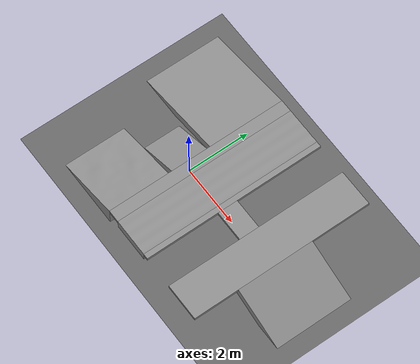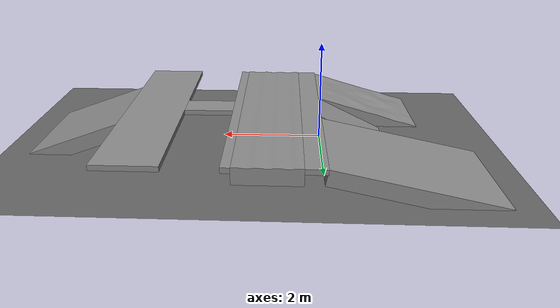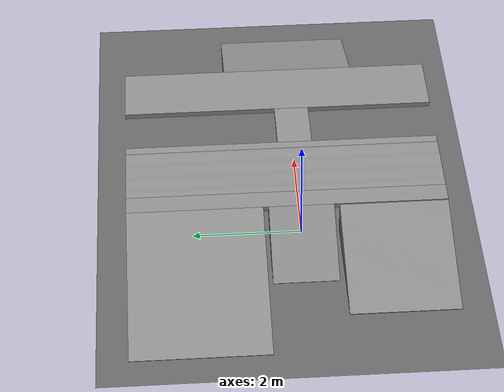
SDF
<?xml version="1.0"?>
<sdf version="1.8">
  <world name="coco_yard">

    <physics name="default_physics" type="dart">
      <max_step_size>0.002</max_step_size>
      <real_time_factor>1.0</real_time_factor>
    </physics>
    <gravity>0 0 -9.8</gravity>

    <plugin filename="gz-sim-physics-system" name="gz::sim::systems::Physics"/>
    <plugin filename="gz-sim-user-commands-system" name="gz::sim::systems::UserCommands"/>
    <plugin filename="gz-sim-scene-broadcaster-system" name="gz::sim::systems::SceneBroadcaster"/>
    <plugin filename="gz-sim-sensors-system" name="gz::sim::systems::Sensors">
      <render_engine>ogre2</render_engine>
    </plugin>
    <plugin filename="gz-sim-imu-system" name="gz::sim::systems::Imu"/>

    <light name="sun" type="directional">
      <cast_shadows>true</cast_shadows>
      <pose>0 0 10 0 0 0</pose>
      <diffuse>0.9 0.9 0.9 1</diffuse>
      <specular>0.3 0.3 0.3 1</specular>
      <direction>-0.5 0.1 -0.9</direction>
    </light>
    <light name="fill" type="directional">
      <cast_shadows>false</cast_shadows>
      <pose>0 0 5 0 0 0</pose>
      <diffuse>0.4 0.4 0.4 1</diffuse>
      <direction>0.5 -0.1 -0.9</direction>
    </light>

    <model name="ground_plane">
      <static>true</static>
      <link name="link">
        <collision name="collision">
          <geometry><plane><normal>0 0 1</normal><size>100 100</size></plane></geometry>
        </collision>
        <visual name="visual">
          <geometry><plane><normal>0 0 1</normal><size>100 100</size></plane></geometry>
          <material><ambient>0.4 0.4 0.4 1</ambient><diffuse>0.4 0.4 0.4 1</diffuse></material>
        </visual>
      </link>
    </model>

    <model name="route_a">
      <static>true</static>
      <link name="link">
        <pose>-1.497818 1.950000 0.178278 0.000000000 -0.209439510 0.000000000</pose>
        <collision name="collision">
          <geometry><box><size>3.126327 2.500000 0.300000</size></box></geometry>
          <surface><friction><ode><mu>0.700000</mu><mu2>0.700000</mu2></ode></friction></surface>
        </collision>
        <visual name="visual">
          <geometry><box><size>3.126327 2.500000 0.300000</size></box></geometry>
          <material><ambient>0.55 0.55 0.55 1</ambient><diffuse>0.55 0.55 0.55 1</diffuse></material>
        </visual>
      </link>
    </model>

    <model name="route_b">
      <static>true</static>
      <link name="link">
        <pose>-0.600593 0.000000 0.190181 0.000000000 -0.453785606 0.000000000</pose>
        <collision name="collision">
          <geometry><box><size>1.482762 1.200000 0.300000</size></box></geometry>
          <surface><friction><ode><mu>0.700000</mu><mu2>0.700000</mu2></ode></friction></surface>
        </collision>
        <visual name="visual">
          <geometry><box><size>1.482762 1.200000 0.300000</size></box></geometry>
          <material><ambient>0.55 0.55 0.55 1</ambient><diffuse>0.55 0.55 0.55 1</diffuse></material>
        </visual>
      </link>
    </model>

    <model name="deck_staging">
      <static>true</static>
      <link name="link">
        <pose>0.200000 0.250000 0.600000 0.000000000 0.000000000 0.000000000</pose>
        <collision name="collision">
          <geometry><box><size>0.400000 5.900000 0.100000</size></box></geometry>
          <surface><friction><ode><mu>0.700000</mu><mu2>0.700000</mu2></ode></friction></surface>
        </collision>
        <visual name="visual">
          <geometry><box><size>0.400000 5.900000 0.100000</size></box></geometry>
          <material><ambient>0.55 0.55 0.55 1</ambient><diffuse>0.55 0.55 0.55 1</diffuse></material>
        </visual>
      </link>
    </model>

    <model name="deck_transition">
      <static>true</static>
      <link name="link">
        <pose>1.712500 0.250000 0.600000 0.000000000 0.000000000 0.000000000</pose>
        <collision name="collision">
          <geometry><box><size>0.175000 5.900000 0.100000</size></box></geometry>
          <surface><friction><ode><mu>0.700000</mu><mu2>0.700000</mu2></ode></friction></surface>
        </collision>
        <visual name="visual">
          <geometry><box><size>0.175000 5.900000 0.100000</size></box></geometry>
          <material><ambient>0.55 0.55 0.55 1</ambient><diffuse>0.55 0.55 0.55 1</diffuse></material>
        </visual>
      </link>
    </model>

    <model name="bridge">
      <static>true</static>
      <link name="link">
        <pose>2.300000 0.000000 0.600000 0.000000000 0.000000000 0.000000000</pose>
        <collision name="collision">
          <geometry><box><size>1.000000 0.650000 0.100000</size></box></geometry>
          <surface><friction><ode><mu>0.700000</mu><mu2>0.700000</mu2></ode></friction></surface>
        </collision>
        <visual name="visual">
          <geometry><box><size>1.000000 0.650000 0.100000</size></box></geometry>
          <material><ambient>0.55 0.55 0.55 1</ambient><diffuse>0.55 0.55 0.55 1</diffuse></material>
        </visual>
      </link>
    </model>

    <model name="deck_approach">
      <static>true</static>
      <link name="link">
        <pose>3.400000 0.250000 0.600000 0.000000000 0.000000000 0.000000000</pose>
        <collision name="collision">
          <geometry><box><size>1.200000 5.900000 0.100000</size></box></geometry>
          <surface><friction><ode><mu>0.700000</mu><mu2>0.700000</mu2></ode></friction></surface>
        </collision>
        <visual name="visual">
          <geometry><box><size>1.200000 5.900000 0.100000</size></box></geometry>
          <material><ambient>0.55 0.55 0.55 1</ambient><diffuse>0.55 0.55 0.55 1</diffuse></material>
        </visual>
      </link>
    </model>

    <model name="descent">
      <static>true</static>
      <link name="link">
        <pose>4.841627 0.000000 0.184046 0.000000000 0.349065850 0.000000000</pose>
        <collision name="collision">
          <geometry><box><size>1.900473 2.500000 0.300000</size></box></geometry>
          <surface><friction><ode><mu>0.700000</mu><mu2>0.700000</mu2></ode></friction></surface>
        </collision>
        <visual name="visual">
          <geometry><box><size>1.900473 2.500000 0.300000</size></box></geometry>
          <material><ambient>0.55 0.55 0.55 1</ambient><diffuse>0.55 0.55 0.55 1</diffuse></material>
        </visual>
      </link>
    </model>

    <model name="rubble">
      <static>true</static>
      <link name="link">
        <pose>0 0 0 0 0 0</pose>
        <collision name="collision">
          <geometry><mesh><uri>package://gazebo_models/meshes/yard/rubble.stl</uri></mesh></geometry>
          <surface><friction><ode><mu>0.700000</mu><mu2>0.700000</mu2></ode></friction></surface>
        </collision>
        <visual name="visual">
          <geometry><mesh><uri>package://gazebo_models/meshes/yard/rubble.stl</uri></mesh></geometry>
          <material><ambient>0.55 0.55 0.55 1</ambient><diffuse>0.55 0.55 0.55 1</diffuse></material>
        </visual>
      </link>
    </model>

    <model name="washboard">
      <static>true</static>
      <link name="link">
        <pose>0 0 0 0 0 0</pose>
        <collision name="collision">
          <geometry><mesh><uri>package://gazebo_models/meshes/yard/washboard.stl</uri></mesh></geometry>
          <surface><friction><ode><mu>0.700000</mu><mu2>0.700000</mu2></ode></friction></surface>
        </collision>
        <visual name="visual">
          <geometry><mesh><uri>package://gazebo_models/meshes/yard/washboard.stl</uri></mesh></geometry>
          <material><ambient>0.55 0.55 0.55 1</ambient><diffuse>0.55 0.55 0.55 1</diffuse></material>
        </visual>
      </link>
    </model>

  </world>
</sdf>
